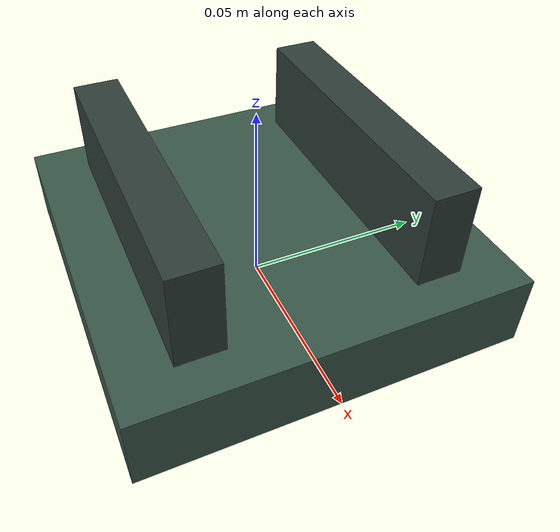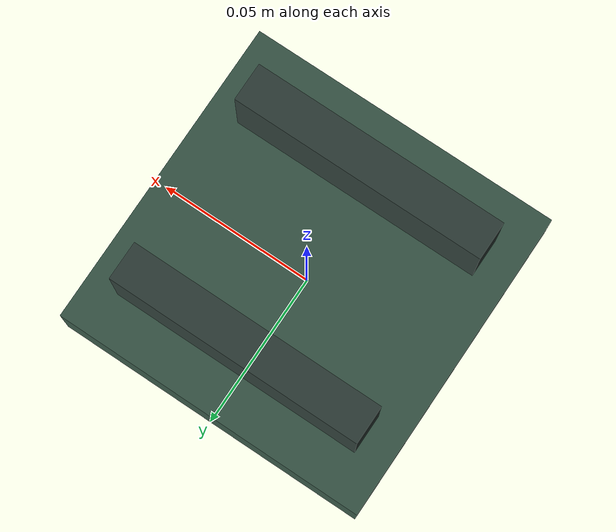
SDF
<?xml version="1.0"?>
<sdf version="1.9">
  <model name="stir_stick_holder">
    <static>true</static>
    <link name="holder_link">
      <collision name="base_collision">
        <pose>0 0 0.01 0 0 0</pose>
        <geometry>
          <box>
            <size>0.10 0.10 0.02</size>
          </box>
        </geometry>
      </collision>
      <visual name="base_visual">
        <pose>0 0 0.01 0 0 0</pose>
        <geometry>
          <box>
            <size>0.10 0.10 0.02</size>
          </box>
        </geometry>
        <material>
          <ambient>0.22 0.34 0.28 1.0</ambient>
          <diffuse>0.22 0.34 0.28 1.0</diffuse>
        </material>
      </visual>

      <collision name="left_guide_collision">
        <pose>0 0.030 0.0325 0 0 0</pose>
        <geometry>
          <box>
            <size>0.080 0.012 0.025</size>
          </box>
        </geometry>
      </collision>
      <visual name="left_guide_visual">
        <pose>0 0.030 0.0325 0 0 0</pose>
        <geometry>
          <box>
            <size>0.080 0.012 0.025</size>
          </box>
        </geometry>
        <material>
          <ambient>0.18 0.24 0.22 1.0</ambient>
          <diffuse>0.18 0.24 0.22 1.0</diffuse>
        </material>
      </visual>

      <collision name="right_guide_collision">
        <pose>0 -0.030 0.0325 0 0 0</pose>
        <geometry>
          <box>
            <size>0.080 0.012 0.025</size>
          </box>
        </geometry>
      </collision>
      <visual name="right_guide_visual">
        <pose>0 -0.030 0.0325 0 0 0</pose>
        <geometry>
          <box>
            <size>0.080 0.012 0.025</size>
          </box>
        </geometry>
        <material>
          <ambient>0.18 0.24 0.22 1.0</ambient>
          <diffuse>0.18 0.24 0.22 1.0</diffuse>
        </material>
      </visual>
    </link>
  </model>
</sdf>
